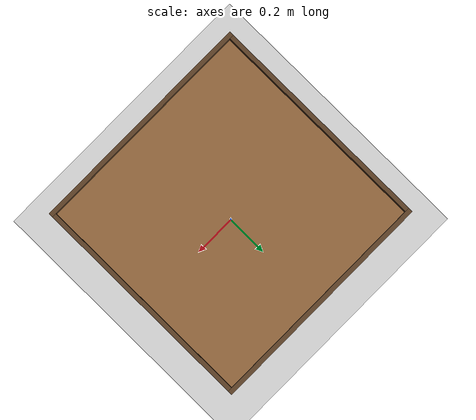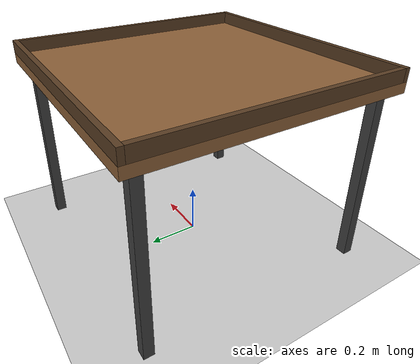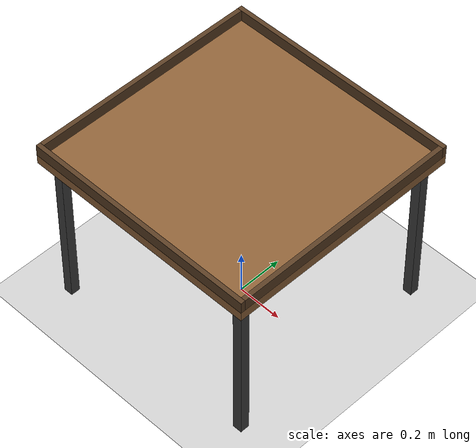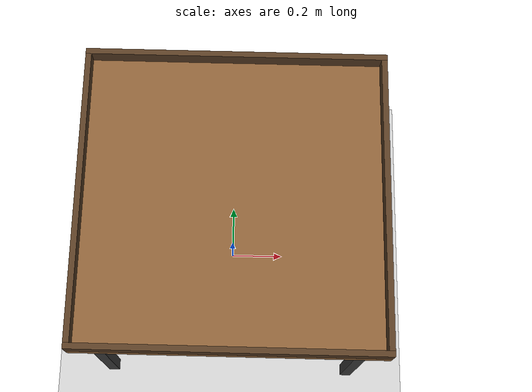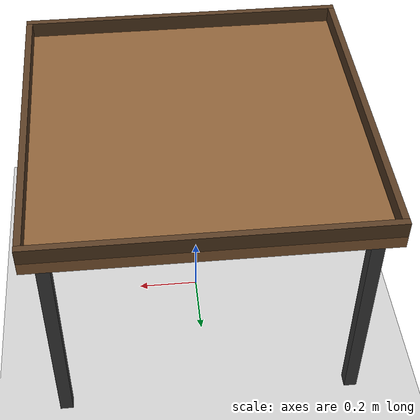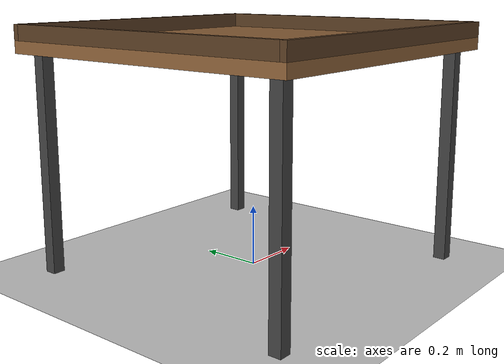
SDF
<?xml version="1.0"?>
<!--
  1 m by 1 m table used as the testing zone.
  The clear driving surface, inside the rim, is 1.00 m by 1.00 m.
  The top face is at z = 0.75 m. Spawn the Burger at z = 0.76 m.
-->
<sdf version="1.6">
  <world name="table_1m">

    <include>
      <uri>model://ground_plane</uri>
    </include>

    <include>
      <uri>model://sun</uri>
    </include>

    <scene>
      <shadows>false</shadows>
    </scene>

    <gui fullscreen="0">
      <camera name="user_camera">
        <pose frame="">1.35 -1.25 1.45 0 0.55 2.35</pose>
        <view_controller>orbit</view_controller>
        <projection_type>perspective</projection_type>
      </camera>
    </gui>

    <physics type="ode">
      <real_time_update_rate>1000.0</real_time_update_rate>
      <max_step_size>0.001</max_step_size>
      <real_time_factor>1</real_time_factor>
      <ode>
        <solver>
          <type>quick</type>
          <iters>150</iters>
          <sor>1.4</sor>
        </solver>
        <constraints>
          <cfm>0.00001</cfm>
          <erp>0.2</erp>
          <contact_max_correcting_vel>100.0</contact_max_correcting_vel>
          <contact_surface_layer>0.001</contact_surface_layer>
        </constraints>
      </ode>
    </physics>

    <model name="table">
      <static>true</static>
      <pose>0 0 0 0 0 0</pose>

      <link name="top">
        <pose>0 0 0.73 0 0 0</pose>
        <collision name="collision">
          <geometry>
            <box>
              <size>1.04 1.04 0.04</size>
            </box>
          </geometry>
        </collision>
        <visual name="visual">
          <geometry>
            <box>
              <size>1.04 1.04 0.04</size>
            </box>
          </geometry>
          <material>
            <ambient>0.55 0.38 0.22 1</ambient>
            <diffuse>0.55 0.38 0.22 1</diffuse>
          </material>
        </visual>
      </link>

      <!-- Rim inner faces sit at x = ±0.50 m and y = ±0.50 m. -->
      <link name="rim_north">
        <pose>0 0.51 0.775 0 0 0</pose>
        <collision name="collision">
          <geometry>
            <box>
              <size>1.04 0.02 0.05</size>
            </box>
          </geometry>
        </collision>
        <visual name="visual">
          <geometry>
            <box>
              <size>1.04 0.02 0.05</size>
            </box>
          </geometry>
          <material>
            <ambient>0.35 0.24 0.14 1</ambient>
            <diffuse>0.35 0.24 0.14 1</diffuse>
          </material>
        </visual>
      </link>

      <link name="rim_south">
        <pose>0 -0.51 0.775 0 0 0</pose>
        <collision name="collision">
          <geometry>
            <box>
              <size>1.04 0.02 0.05</size>
            </box>
          </geometry>
        </collision>
        <visual name="visual">
          <geometry>
            <box>
              <size>1.04 0.02 0.05</size>
            </box>
          </geometry>
          <material>
            <ambient>0.35 0.24 0.14 1</ambient>
            <diffuse>0.35 0.24 0.14 1</diffuse>
          </material>
        </visual>
      </link>

      <link name="rim_east">
        <pose>0.51 0 0.775 0 0 0</pose>
        <collision name="collision">
          <geometry>
            <box>
              <size>0.02 1.00 0.05</size>
            </box>
          </geometry>
        </collision>
        <visual name="visual">
          <geometry>
            <box>
              <size>0.02 1.00 0.05</size>
            </box>
          </geometry>
          <material>
            <ambient>0.35 0.24 0.14 1</ambient>
            <diffuse>0.35 0.24 0.14 1</diffuse>
          </material>
        </visual>
      </link>

      <link name="rim_west">
        <pose>-0.51 0 0.775 0 0 0</pose>
        <collision name="collision">
          <geometry>
            <box>
              <size>0.02 1.00 0.05</size>
            </box>
          </geometry>
        </collision>
        <visual name="visual">
          <geometry>
            <box>
              <size>0.02 1.00 0.05</size>
            </box>
          </geometry>
          <material>
            <ambient>0.35 0.24 0.14 1</ambient>
            <diffuse>0.35 0.24 0.14 1</diffuse>
          </material>
        </visual>
      </link>

      <link name="leg_ne">
        <pose>0.46 0.46 0.355 0 0 0</pose>
        <collision name="collision">
          <geometry>
            <box>
              <size>0.04 0.04 0.71</size>
            </box>
          </geometry>
        </collision>
        <visual name="visual">
          <geometry>
            <box>
              <size>0.04 0.04 0.71</size>
            </box>
          </geometry>
          <material>
            <ambient>0.25 0.25 0.25 1</ambient>
            <diffuse>0.25 0.25 0.25 1</diffuse>
          </material>
        </visual>
      </link>

      <link name="leg_nw">
        <pose>-0.46 0.46 0.355 0 0 0</pose>
        <collision name="collision">
          <geometry>
            <box>
              <size>0.04 0.04 0.71</size>
            </box>
          </geometry>
        </collision>
        <visual name="visual">
          <geometry>
            <box>
              <size>0.04 0.04 0.71</size>
            </box>
          </geometry>
          <material>
            <ambient>0.25 0.25 0.25 1</ambient>
            <diffuse>0.25 0.25 0.25 1</diffuse>
          </material>
        </visual>
      </link>

      <link name="leg_se">
        <pose>0.46 -0.46 0.355 0 0 0</pose>
        <collision name="collision">
          <geometry>
            <box>
              <size>0.04 0.04 0.71</size>
            </box>
          </geometry>
        </collision>
        <visual name="visual">
          <geometry>
            <box>
              <size>0.04 0.04 0.71</size>
            </box>
          </geometry>
          <material>
            <ambient>0.25 0.25 0.25 1</ambient>
            <diffuse>0.25 0.25 0.25 1</diffuse>
          </material>
        </visual>
      </link>

      <link name="leg_sw">
        <pose>-0.46 -0.46 0.355 0 0 0</pose>
        <collision name="collision">
          <geometry>
            <box>
              <size>0.04 0.04 0.71</size>
            </box>
          </geometry>
        </collision>
        <visual name="visual">
          <geometry>
            <box>
              <size>0.04 0.04 0.71</size>
            </box>
          </geometry>
          <material>
            <ambient>0.25 0.25 0.25 1</ambient>
            <diffuse>0.25 0.25 0.25 1</diffuse>
          </material>
        </visual>
      </link>
    </model>

  </world>
</sdf>
